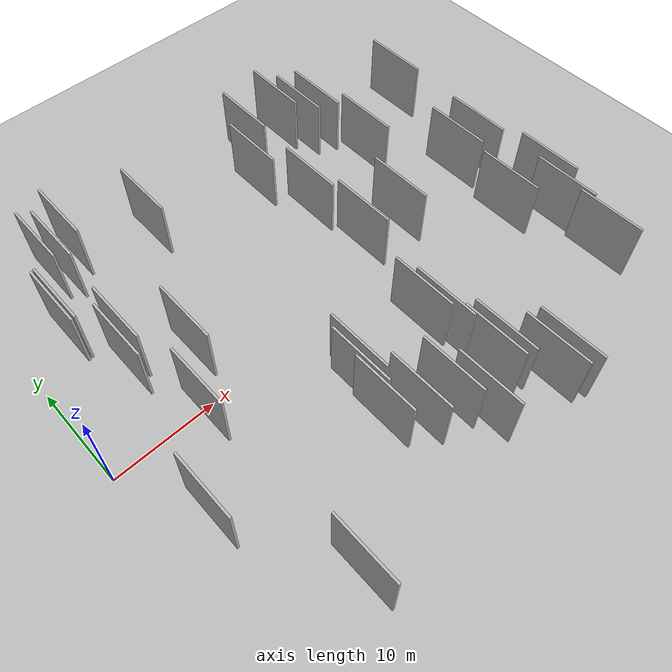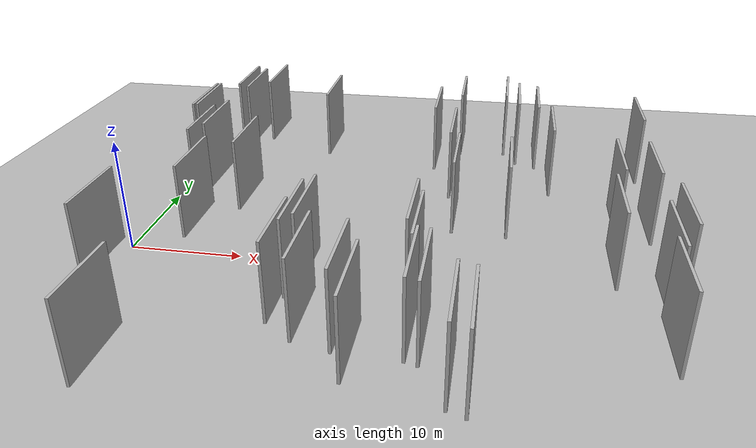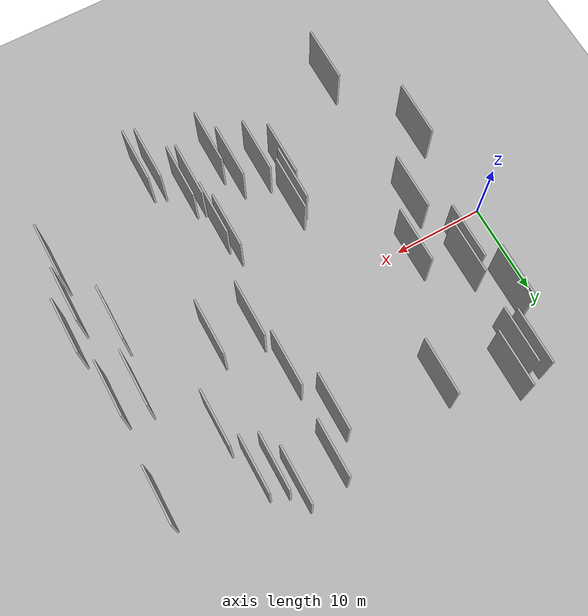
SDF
<?xml version="1.0" encoding="utf-8"?>

<sdf version="1.6">

   <world name="default">

      <gui fullscreen="0">

         <camera name="user_camera">

            <pose>-15 0 4.57585 0 0 0</pose>

            <view_controller>orbit</view_controller>

         </camera>

      </gui>

      <scene>

         <sky>

           <clouds>

             <speed>12</speed>

           </clouds>

         </sky>

         <ambient>0.4 0.4 0.4 1</ambient>

         <background>0.7 0.7 0.7 1</background>

         <shadows>1</shadows>

      </scene>

      <gravity>0 0 -9.8066</gravity>

      <magnetic_field>6e-06 2.3e-05 -4.2e-05</magnetic_field>

      <physics default="0" name="default_physics" type="ode">

         <ode>

            <solver>

               <type>quick</type>

               <iters>10</iters>

               <sor>1.0</sor>

               <use_dynamic_moi_rescaling>0</use_dynamic_moi_rescaling>

            </solver>

            <constraints>

               <cfm>0</cfm>

               <erp>0.2</erp>

               <contact_max_correcting_vel>100</contact_max_correcting_vel>

               <contact_surface_layer>0.001</contact_surface_layer>

            </constraints>

         </ode>

         <max_step_size>0.004</max_step_size>

         <real_time_factor>1</real_time_factor>

         <real_time_update_rate>250</real_time_update_rate>

      </physics>

      <light name="sun" type="directional">

         <cast_shadows>1</cast_shadows>

         <pose>0 0 10 0 0 0</pose>

         <diffuse>0.8 0.8 0.8 1</diffuse>

         <specular>0.2 0.2 0.2 1</specular>

         <attenuation>

            <range>1000</range>

            <constant>0.9</constant>

            <linear>0.01</linear>

            <quadratic>0.001</quadratic>

         </attenuation>

         <direction>-0.5 0.1 -0.9</direction>

      </light>

      <include>

         <name>ground_plane_1</name>

         <uri>model://HANNAS_ground_plane</uri>

         <pose>0 0 0  0 0 0</pose>

      </include>

      <include>

         <name>ground_plane_2</name>

         <uri>model://HANNAS_ground_plane</uri>

         <pose>100 0 0  0 0 0</pose>

      </include>

      <model name="HANNAS_wall_1">

         <static>1</static>

         <pose frame="">39.8931 -4.7881 5.0 0.000000 0.000000 1.570796</pose>

         <link name="link">

            <pose frame="">0 0 3.00 0 0 0</pose>

            <collision name="collision">

               <geometry>

                  <box>

                     <size>6.00 0.2 6.00</size>

                  </box>

               </geometry>

               <max_contacts>10</max_contacts>

               <surface>

                  <contact>

                     <ode/>

                  </contact>

                  <bounce/>

                  <friction>

                     <torsional>

                        <ode/>

                     </torsional>

                     <ode/>

                  </friction>

               </surface>

            </collision>

            <visual name="visual">

               <cast_shadows>0</cast_shadows>

               <geometry>

                  <box>

                     <size>6.00 0.2 6.00</size>

                  </box>

               </geometry>

               <material>

                  <script>

                     <uri>model://HANNAS_wall/materials/scripts</uri>

                     <uri>model://HANNAS_wall/materials/textures</uri>

                     <name>vrc/HANNAS_wall</name>

                  </script>

               </material>

            </visual>

            <self_collide>0</self_collide>

            <enable_wind>0</enable_wind>

            <kinematic>0</kinematic>

         </link>

      </model>

      <model name="HANNAS_wall_2">

         <static>1</static>

         <pose frame="">18.4958 -8.3169 5.0 0.000000 0.000000 1.570796</pose>

         <link name="link">

            <pose frame="">0 0 3.00 0 0 0</pose>

            <collision name="collision">

               <geometry>

                  <box>

                     <size>6.00 0.2 6.00</size>

                  </box>

               </geometry>

               <max_contacts>10</max_contacts>

               <surface>

                  <contact>

                     <ode/>

                  </contact>

                  <bounce/>

                  <friction>

                     <torsional>

                        <ode/>

                     </torsional>

                     <ode/>

                  </friction>

               </surface>

            </collision>

            <visual name="visual">

               <cast_shadows>0</cast_shadows>

               <geometry>

                  <box>

                     <size>6.00 0.2 6.00</size>

                  </box>

               </geometry>

               <material>

                  <script>

                     <uri>model://HANNAS_wall/materials/scripts</uri>

                     <uri>model://HANNAS_wall/materials/textures</uri>

                     <name>vrc/HANNAS_wall</name>

                  </script>

               </material>

            </visual>

            <self_collide>0</self_collide>

            <enable_wind>0</enable_wind>

            <kinematic>0</kinematic>

         </link>

      </model>

      <model name="HANNAS_wall_3">

         <static>1</static>

         <pose frame="">6.6819 5.8237 5.0 0.000000 0.000000 1.570796</pose>

         <link name="link">

            <pose frame="">0 0 3.00 0 0 0</pose>

            <collision name="collision">

               <geometry>

                  <box>

                     <size>6.00 0.2 6.00</size>

                  </box>

               </geometry>

               <max_contacts>10</max_contacts>

               <surface>

                  <contact>

                     <ode/>

                  </contact>

                  <bounce/>

                  <friction>

                     <torsional>

                        <ode/>

                     </torsional>

                     <ode/>

                  </friction>

               </surface>

            </collision>

            <visual name="visual">

               <cast_shadows>0</cast_shadows>

               <geometry>

                  <box>

                     <size>6.00 0.2 6.00</size>

                  </box>

               </geometry>

               <material>

                  <script>

                     <uri>model://HANNAS_wall/materials/scripts</uri>

                     <uri>model://HANNAS_wall/materials/textures</uri>

                     <name>vrc/HANNAS_wall</name>

                  </script>

               </material>

            </visual>

            <self_collide>0</self_collide>

            <enable_wind>0</enable_wind>

            <kinematic>0</kinematic>

         </link>

      </model>

      <model name="HANNAS_wall_4">

         <static>1</static>

         <pose frame="">43.1274 1.7760 5.0 0.000000 0.000000 1.570796</pose>

         <link name="link">

            <pose frame="">0 0 3.00 0 0 0</pose>

            <collision name="collision">

               <geometry>

                  <box>

                     <size>6.00 0.2 6.00</size>

                  </box>

               </geometry>

               <max_contacts>10</max_contacts>

               <surface>

                  <contact>

                     <ode/>

                  </contact>

                  <bounce/>

                  <friction>

                     <torsional>

                        <ode/>

                     </torsional>

                     <ode/>

                  </friction>

               </surface>

            </collision>

            <visual name="visual">

               <cast_shadows>0</cast_shadows>

               <geometry>

                  <box>

                     <size>6.00 0.2 6.00</size>

                  </box>

               </geometry>

               <material>

                  <script>

                     <uri>model://HANNAS_wall/materials/scripts</uri>

                     <uri>model://HANNAS_wall/materials/textures</uri>

                     <name>vrc/HANNAS_wall</name>

                  </script>

               </material>

            </visual>

            <self_collide>0</self_collide>

            <enable_wind>0</enable_wind>

            <kinematic>0</kinematic>

         </link>

      </model>

      <model name="HANNAS_wall_5">

         <static>1</static>

         <pose frame="">31.8089 17.0045 5.0 0.000000 0.000000 1.570796</pose>

         <link name="link">

            <pose frame="">0 0 3.00 0 0 0</pose>

            <collision name="collision">

               <geometry>

                  <box>

                     <size>6.00 0.2 6.00</size>

                  </box>

               </geometry>

               <max_contacts>10</max_contacts>

               <surface>

                  <contact>

                     <ode/>

                  </contact>

                  <bounce/>

                  <friction>

                     <torsional>

                        <ode/>

                     </torsional>

                     <ode/>

                  </friction>

               </surface>

            </collision>

            <visual name="visual">

               <cast_shadows>0</cast_shadows>

               <geometry>

                  <box>

                     <size>6.00 0.2 6.00</size>

                  </box>

               </geometry>

               <material>

                  <script>

                     <uri>model://HANNAS_wall/materials/scripts</uri>

                     <uri>model://HANNAS_wall/materials/textures</uri>

                     <name>vrc/HANNAS_wall</name>

                  </script>

               </material>

            </visual>

            <self_collide>0</self_collide>

            <enable_wind>0</enable_wind>

            <kinematic>0</kinematic>

         </link>

      </model>

      <model name="HANNAS_wall_6">

         <static>1</static>

         <pose frame="">27.7106 16.5119 5.0 0.000000 0.000000 1.570796</pose>

         <link name="link">

            <pose frame="">0 0 3.00 0 0 0</pose>

            <collision name="collision">

               <geometry>

                  <box>

                     <size>6.00 0.2 6.00</size>

                  </box>

               </geometry>

               <max_contacts>10</max_contacts>

               <surface>

                  <contact>

                     <ode/>

                  </contact>

                  <bounce/>

                  <friction>

                     <torsional>

                        <ode/>

                     </torsional>

                     <ode/>

                  </friction>

               </surface>

            </collision>

            <visual name="visual">

               <cast_shadows>0</cast_shadows>

               <geometry>

                  <box>

                     <size>6.00 0.2 6.00</size>

                  </box>

               </geometry>

               <material>

                  <script>

                     <uri>model://HANNAS_wall/materials/scripts</uri>

                     <uri>model://HANNAS_wall/materials/textures</uri>

                     <name>vrc/HANNAS_wall</name>

                  </script>

               </material>

            </visual>

            <self_collide>0</self_collide>

            <enable_wind>0</enable_wind>

            <kinematic>0</kinematic>

         </link>

      </model>

      <model name="HANNAS_wall_7">

         <static>1</static>

         <pose frame="">42.8844 -8.4914 5.0 0.000000 0.000000 1.570796</pose>

         <link name="link">

            <pose frame="">0 0 3.00 0 0 0</pose>

            <collision name="collision">

               <geometry>

                  <box>

                     <size>6.00 0.2 6.00</size>

                  </box>

               </geometry>

               <max_contacts>10</max_contacts>

               <surface>

                  <contact>

                     <ode/>

                  </contact>

                  <bounce/>

                  <friction>

                     <torsional>

                        <ode/>

                     </torsional>

                     <ode/>

                  </friction>

               </surface>

            </collision>

            <visual name="visual">

               <cast_shadows>0</cast_shadows>

               <geometry>

                  <box>

                     <size>6.00 0.2 6.00</size>

                  </box>

               </geometry>

               <material>

                  <script>

                     <uri>model://HANNAS_wall/materials/scripts</uri>

                     <uri>model://HANNAS_wall/materials/textures</uri>

                     <name>vrc/HANNAS_wall</name>

                  </script>

               </material>

            </visual>

            <self_collide>0</self_collide>

            <enable_wind>0</enable_wind>

            <kinematic>0</kinematic>

         </link>

      </model>

      <model name="HANNAS_wall_8">

         <static>1</static>

         <pose frame="">43.4499 12.5827 5.0 0.000000 0.000000 1.570796</pose>

         <link name="link">

            <pose frame="">0 0 3.00 0 0 0</pose>

            <collision name="collision">

               <geometry>

                  <box>

                     <size>6.00 0.2 6.00</size>

                  </box>

               </geometry>

               <max_contacts>10</max_contacts>

               <surface>

                  <contact>

                     <ode/>

                  </contact>

                  <bounce/>

                  <friction>

                     <torsional>

                        <ode/>

                     </torsional>

                     <ode/>

                  </friction>

               </surface>

            </collision>

            <visual name="visual">

               <cast_shadows>0</cast_shadows>

               <geometry>

                  <box>

                     <size>6.00 0.2 6.00</size>

                  </box>

               </geometry>

               <material>

                  <script>

                     <uri>model://HANNAS_wall/materials/scripts</uri>

                     <uri>model://HANNAS_wall/materials/textures</uri>

                     <name>vrc/HANNAS_wall</name>

                  </script>

               </material>

            </visual>

            <self_collide>0</self_collide>

            <enable_wind>0</enable_wind>

            <kinematic>0</kinematic>

         </link>

      </model>

      <model name="HANNAS_wall_9">

         <static>1</static>

         <pose frame="">25.5836 12.7834 5.0 0.000000 0.000000 1.570796</pose>

         <link name="link">

            <pose frame="">0 0 3.00 0 0 0</pose>

            <collision name="collision">

               <geometry>

                  <box>

                     <size>6.00 0.2 6.00</size>

                  </box>

               </geometry>

               <max_contacts>10</max_contacts>

               <surface>

                  <contact>

                     <ode/>

                  </contact>

                  <bounce/>

                  <friction>

                     <torsional>

                        <ode/>

                     </torsional>

                     <ode/>

                  </friction>

               </surface>

            </collision>

            <visual name="visual">

               <cast_shadows>0</cast_shadows>

               <geometry>

                  <box>

                     <size>6.00 0.2 6.00</size>

                  </box>

               </geometry>

               <material>

                  <script>

                     <uri>model://HANNAS_wall/materials/scripts</uri>

                     <uri>model://HANNAS_wall/materials/textures</uri>

                     <name>vrc/HANNAS_wall</name>

                  </script>

               </material>

            </visual>

            <self_collide>0</self_collide>

            <enable_wind>0</enable_wind>

            <kinematic>0</kinematic>

         </link>

      </model>

      <model name="HANNAS_wall_10">

         <static>1</static>

         <pose frame="">32.9548 14.9799 5.0 0.000000 0.000000 1.570796</pose>

         <link name="link">

            <pose frame="">0 0 3.00 0 0 0</pose>

            <collision name="collision">

               <geometry>

                  <box>

                     <size>6.00 0.2 6.00</size>

                  </box>

               </geometry>

               <max_contacts>10</max_contacts>

               <surface>

                  <contact>

                     <ode/>

                  </contact>

                  <bounce/>

                  <friction>

                     <torsional>

                        <ode/>

                     </torsional>

                     <ode/>

                  </friction>

               </surface>

            </collision>

            <visual name="visual">

               <cast_shadows>0</cast_shadows>

               <geometry>

                  <box>

                     <size>6.00 0.2 6.00</size>

                  </box>

               </geometry>

               <material>

                  <script>

                     <uri>model://HANNAS_wall/materials/scripts</uri>

                     <uri>model://HANNAS_wall/materials/textures</uri>

                     <name>vrc/HANNAS_wall</name>

                  </script>

               </material>

            </visual>

            <self_collide>0</self_collide>

            <enable_wind>0</enable_wind>

            <kinematic>0</kinematic>

         </link>

      </model>

      <model name="HANNAS_wall_11">

         <static>1</static>

         <pose frame="">27.4115 7.1370 5.0 0.000000 0.000000 1.570796</pose>

         <link name="link">

            <pose frame="">0 0 3.00 0 0 0</pose>

            <collision name="collision">

               <geometry>

                  <box>

                     <size>6.00 0.2 6.00</size>

                  </box>

               </geometry>

               <max_contacts>10</max_contacts>

               <surface>

                  <contact>

                     <ode/>

                  </contact>

                  <bounce/>

                  <friction>

                     <torsional>

                        <ode/>

                     </torsional>

                     <ode/>

                  </friction>

               </surface>

            </collision>

            <visual name="visual">

               <cast_shadows>0</cast_shadows>

               <geometry>

                  <box>

                     <size>6.00 0.2 6.00</size>

                  </box>

               </geometry>

               <material>

                  <script>

                     <uri>model://HANNAS_wall/materials/scripts</uri>

                     <uri>model://HANNAS_wall/materials/textures</uri>

                     <name>vrc/HANNAS_wall</name>

                  </script>

               </material>

            </visual>

            <self_collide>0</self_collide>

            <enable_wind>0</enable_wind>

            <kinematic>0</kinematic>

         </link>

      </model>

      <model name="HANNAS_wall_12">

         <static>1</static>

         <pose frame="">4.2391 10.3769 5.0 0.000000 0.000000 1.570796</pose>

         <link name="link">

            <pose frame="">0 0 3.00 0 0 0</pose>

            <collision name="collision">

               <geometry>

                  <box>

                     <size>6.00 0.2 6.00</size>

                  </box>

               </geometry>

               <max_contacts>10</max_contacts>

               <surface>

                  <contact>

                     <ode/>

                  </contact>

                  <bounce/>

                  <friction>

                     <torsional>

                        <ode/>

                     </torsional>

                     <ode/>

                  </friction>

               </surface>

            </collision>

            <visual name="visual">

               <cast_shadows>0</cast_shadows>

               <geometry>

                  <box>

                     <size>6.00 0.2 6.00</size>

                  </box>

               </geometry>

               <material>

                  <script>

                     <uri>model://HANNAS_wall/materials/scripts</uri>

                     <uri>model://HANNAS_wall/materials/textures</uri>

                     <name>vrc/HANNAS_wall</name>

                  </script>

               </material>

            </visual>

            <self_collide>0</self_collide>

            <enable_wind>0</enable_wind>

            <kinematic>0</kinematic>

         </link>

      </model>

      <model name="HANNAS_wall_13">

         <static>1</static>

         <pose frame="">10.5431 2.3952 5.0 0.000000 0.000000 1.570796</pose>

         <link name="link">

            <pose frame="">0 0 3.00 0 0 0</pose>

            <collision name="collision">

               <geometry>

                  <box>

                     <size>6.00 0.2 6.00</size>

                  </box>

               </geometry>

               <max_contacts>10</max_contacts>

               <surface>

                  <contact>

                     <ode/>

                  </contact>

                  <bounce/>

                  <friction>

                     <torsional>

                        <ode/>

                     </torsional>

                     <ode/>

                  </friction>

               </surface>

            </collision>

            <visual name="visual">

               <cast_shadows>0</cast_shadows>

               <geometry>

                  <box>

                     <size>6.00 0.2 6.00</size>

                  </box>

               </geometry>

               <material>

                  <script>

                     <uri>model://HANNAS_wall/materials/scripts</uri>

                     <uri>model://HANNAS_wall/materials/textures</uri>

                     <name>vrc/HANNAS_wall</name>

                  </script>

               </material>

            </visual>

            <self_collide>0</self_collide>

            <enable_wind>0</enable_wind>

            <kinematic>0</kinematic>

         </link>

      </model>

      <model name="HANNAS_wall_14">

         <static>1</static>

         <pose frame="">25.8835 -7.8396 5.0 0.000000 0.000000 1.570796</pose>

         <link name="link">

            <pose frame="">0 0 3.00 0 0 0</pose>

            <collision name="collision">

               <geometry>

                  <box>

                     <size>6.00 0.2 6.00</size>

                  </box>

               </geometry>

               <max_contacts>10</max_contacts>

               <surface>

                  <contact>

                     <ode/>

                  </contact>

                  <bounce/>

                  <friction>

                     <torsional>

                        <ode/>

                     </torsional>

                     <ode/>

                  </friction>

               </surface>

            </collision>

            <visual name="visual">

               <cast_shadows>0</cast_shadows>

               <geometry>

                  <box>

                     <size>6.00 0.2 6.00</size>

                  </box>

               </geometry>

               <material>

                  <script>

                     <uri>model://HANNAS_wall/materials/scripts</uri>

                     <uri>model://HANNAS_wall/materials/textures</uri>

                     <name>vrc/HANNAS_wall</name>

                  </script>

               </material>

            </visual>

            <self_collide>0</self_collide>

            <enable_wind>0</enable_wind>

            <kinematic>0</kinematic>

         </link>

      </model>

      <model name="HANNAS_wall_15">

         <static>1</static>

         <pose frame="">26.4255 -9.6365 5.0 0.000000 0.000000 1.570796</pose>

         <link name="link">

            <pose frame="">0 0 3.00 0 0 0</pose>

            <collision name="collision">

               <geometry>

                  <box>

                     <size>6.00 0.2 6.00</size>

                  </box>

               </geometry>

               <max_contacts>10</max_contacts>

               <surface>

                  <contact>

                     <ode/>

                  </contact>

                  <bounce/>

                  <friction>

                     <torsional>

                        <ode/>

                     </torsional>

                     <ode/>

                  </friction>

               </surface>

            </collision>

            <visual name="visual">

               <cast_shadows>0</cast_shadows>

               <geometry>

                  <box>

                     <size>6.00 0.2 6.00</size>

                  </box>

               </geometry>

               <material>

                  <script>

                     <uri>model://HANNAS_wall/materials/scripts</uri>

                     <uri>model://HANNAS_wall/materials/textures</uri>

                     <name>vrc/HANNAS_wall</name>

                  </script>

               </material>

            </visual>

            <self_collide>0</self_collide>

            <enable_wind>0</enable_wind>

            <kinematic>0</kinematic>

         </link>

      </model>

      <model name="HANNAS_wall_16">

         <static>1</static>

         <pose frame="">3.9068 10.2969 5.0 0.000000 0.000000 1.570796</pose>

         <link name="link">

            <pose frame="">0 0 3.00 0 0 0</pose>

            <collision name="collision">

               <geometry>

                  <box>

                     <size>6.00 0.2 6.00</size>

                  </box>

               </geometry>

               <max_contacts>10</max_contacts>

               <surface>

                  <contact>

                     <ode/>

                  </contact>

                  <bounce/>

                  <friction>

                     <torsional>

                        <ode/>

                     </torsional>

                     <ode/>

                  </friction>

               </surface>

            </collision>

            <visual name="visual">

               <cast_shadows>0</cast_shadows>

               <geometry>

                  <box>

                     <size>6.00 0.2 6.00</size>

                  </box>

               </geometry>

               <material>

                  <script>

                     <uri>model://HANNAS_wall/materials/scripts</uri>

                     <uri>model://HANNAS_wall/materials/textures</uri>

                     <name>vrc/HANNAS_wall</name>

                  </script>

               </material>

            </visual>

            <self_collide>0</self_collide>

            <enable_wind>0</enable_wind>

            <kinematic>0</kinematic>

         </link>

      </model>

      <model name="HANNAS_wall_17">

         <static>1</static>

         <pose frame="">3.3383 -9.3803 5.0 0.000000 0.000000 1.570796</pose>

         <link name="link">

            <pose frame="">0 0 3.00 0 0 0</pose>

            <collision name="collision">

               <geometry>

                  <box>

                     <size>6.00 0.2 6.00</size>

                  </box>

               </geometry>

               <max_contacts>10</max_contacts>

               <surface>

                  <contact>

                     <ode/>

                  </contact>

                  <bounce/>

                  <friction>

                     <torsional>

                        <ode/>

                     </torsional>

                     <ode/>

                  </friction>

               </surface>

            </collision>

            <visual name="visual">

               <cast_shadows>0</cast_shadows>

               <geometry>

                  <box>

                     <size>6.00 0.2 6.00</size>

                  </box>

               </geometry>

               <material>

                  <script>

                     <uri>model://HANNAS_wall/materials/scripts</uri>

                     <uri>model://HANNAS_wall/materials/textures</uri>

                     <name>vrc/HANNAS_wall</name>

                  </script>

               </material>

            </visual>

            <self_collide>0</self_collide>

            <enable_wind>0</enable_wind>

            <kinematic>0</kinematic>

         </link>

      </model>

      <model name="HANNAS_wall_18">

         <static>1</static>

         <pose frame="">26.6523 -14.4585 5.0 0.000000 0.000000 1.570796</pose>

         <link name="link">

            <pose frame="">0 0 3.00 0 0 0</pose>

            <collision name="collision">

               <geometry>

                  <box>

                     <size>6.00 0.2 6.00</size>

                  </box>

               </geometry>

               <max_contacts>10</max_contacts>

               <surface>

                  <contact>

                     <ode/>

                  </contact>

                  <bounce/>

                  <friction>

                     <torsional>

                        <ode/>

                     </torsional>

                     <ode/>

                  </friction>

               </surface>

            </collision>

            <visual name="visual">

               <cast_shadows>0</cast_shadows>

               <geometry>

                  <box>

                     <size>6.00 0.2 6.00</size>

                  </box>

               </geometry>

               <material>

                  <script>

                     <uri>model://HANNAS_wall/materials/scripts</uri>

                     <uri>model://HANNAS_wall/materials/textures</uri>

                     <name>vrc/HANNAS_wall</name>

                  </script>

               </material>

            </visual>

            <self_collide>0</self_collide>

            <enable_wind>0</enable_wind>

            <kinematic>0</kinematic>

         </link>

      </model>

      <model name="HANNAS_wall_19">

         <static>1</static>

         <pose frame="">22.1800 -14.3262 5.0 0.000000 0.000000 1.570796</pose>

         <link name="link">

            <pose frame="">0 0 3.00 0 0 0</pose>

            <collision name="collision">

               <geometry>

                  <box>

                     <size>6.00 0.2 6.00</size>

                  </box>

               </geometry>

               <max_contacts>10</max_contacts>

               <surface>

                  <contact>

                     <ode/>

                  </contact>

                  <bounce/>

                  <friction>

                     <torsional>

                        <ode/>

                     </torsional>

                     <ode/>

                  </friction>

               </surface>

            </collision>

            <visual name="visual">

               <cast_shadows>0</cast_shadows>

               <geometry>

                  <box>

                     <size>6.00 0.2 6.00</size>

                  </box>

               </geometry>

               <material>

                  <script>

                     <uri>model://HANNAS_wall/materials/scripts</uri>

                     <uri>model://HANNAS_wall/materials/textures</uri>

                     <name>vrc/HANNAS_wall</name>

                  </script>

               </material>

            </visual>

            <self_collide>0</self_collide>

            <enable_wind>0</enable_wind>

            <kinematic>0</kinematic>

         </link>

      </model>

      <model name="HANNAS_wall_20">

         <static>1</static>

         <pose frame="">40.6523 2.0046 5.0 0.000000 0.000000 1.570796</pose>

         <link name="link">

            <pose frame="">0 0 3.00 0 0 0</pose>

            <collision name="collision">

               <geometry>

                  <box>

                     <size>6.00 0.2 6.00</size>

                  </box>

               </geometry>

               <max_contacts>10</max_contacts>

               <surface>

                  <contact>

                     <ode/>

                  </contact>

                  <bounce/>

                  <friction>

                     <torsional>

                        <ode/>

                     </torsional>

                     <ode/>

                  </friction>

               </surface>

            </collision>

            <visual name="visual">

               <cast_shadows>0</cast_shadows>

               <geometry>

                  <box>

                     <size>6.00 0.2 6.00</size>

                  </box>

               </geometry>

               <material>

                  <script>

                     <uri>model://HANNAS_wall/materials/scripts</uri>

                     <uri>model://HANNAS_wall/materials/textures</uri>

                     <name>vrc/HANNAS_wall</name>

                  </script>

               </material>

            </visual>

            <self_collide>0</self_collide>

            <enable_wind>0</enable_wind>

            <kinematic>0</kinematic>

         </link>

      </model>

      <model name="HANNAS_wall_21">

         <static>1</static>

         <pose frame="">28.1357 1.2320 5.0 0.000000 0.000000 1.570796</pose>

         <link name="link">

            <pose frame="">0 0 3.00 0 0 0</pose>

            <collision name="collision">

               <geometry>

                  <box>

                     <size>6.00 0.2 6.00</size>

                  </box>

               </geometry>

               <max_contacts>10</max_contacts>

               <surface>

                  <contact>

                     <ode/>

                  </contact>

                  <bounce/>

                  <friction>

                     <torsional>

                        <ode/>

                     </torsional>

                     <ode/>

                  </friction>

               </surface>

            </collision>

            <visual name="visual">

               <cast_shadows>0</cast_shadows>

               <geometry>

                  <box>

                     <size>6.00 0.2 6.00</size>

                  </box>

               </geometry>

               <material>

                  <script>

                     <uri>model://HANNAS_wall/materials/scripts</uri>

                     <uri>model://HANNAS_wall/materials/textures</uri>

                     <name>vrc/HANNAS_wall</name>

                  </script>

               </material>

            </visual>

            <self_collide>0</self_collide>

            <enable_wind>0</enable_wind>

            <kinematic>0</kinematic>

         </link>

      </model>

      <model name="HANNAS_wall_22">

         <static>1</static>

         <pose frame="">34.6596 14.2995 5.0 0.000000 0.000000 1.570796</pose>

         <link name="link">

            <pose frame="">0 0 3.00 0 0 0</pose>

            <collision name="collision">

               <geometry>

                  <box>

                     <size>6.00 0.2 6.00</size>

                  </box>

               </geometry>

               <max_contacts>10</max_contacts>

               <surface>

                  <contact>

                     <ode/>

                  </contact>

                  <bounce/>

                  <friction>

                     <torsional>

                        <ode/>

                     </torsional>

                     <ode/>

                  </friction>

               </surface>

            </collision>

            <visual name="visual">

               <cast_shadows>0</cast_shadows>

               <geometry>

                  <box>

                     <size>6.00 0.2 6.00</size>

                  </box>

               </geometry>

               <material>

                  <script>

                     <uri>model://HANNAS_wall/materials/scripts</uri>

                     <uri>model://HANNAS_wall/materials/textures</uri>

                     <name>vrc/HANNAS_wall</name>

                  </script>

               </material>

            </visual>

            <self_collide>0</self_collide>

            <enable_wind>0</enable_wind>

            <kinematic>0</kinematic>

         </link>

      </model>

      <model name="HANNAS_wall_23">

         <static>1</static>

         <pose frame="">7.9140 -2.6697 5.0 0.000000 0.000000 1.570796</pose>

         <link name="link">

            <pose frame="">0 0 3.00 0 0 0</pose>

            <collision name="collision">

               <geometry>

                  <box>

                     <size>6.00 0.2 6.00</size>

                  </box>

               </geometry>

               <max_contacts>10</max_contacts>

               <surface>

                  <contact>

                     <ode/>

                  </contact>

                  <bounce/>

                  <friction>

                     <torsional>

                        <ode/>

                     </torsional>

                     <ode/>

                  </friction>

               </surface>

            </collision>

            <visual name="visual">

               <cast_shadows>0</cast_shadows>

               <geometry>

                  <box>

                     <size>6.00 0.2 6.00</size>

                  </box>

               </geometry>

               <material>

                  <script>

                     <uri>model://HANNAS_wall/materials/scripts</uri>

                     <uri>model://HANNAS_wall/materials/textures</uri>

                     <name>vrc/HANNAS_wall</name>

                  </script>

               </material>

            </visual>

            <self_collide>0</self_collide>

            <enable_wind>0</enable_wind>

            <kinematic>0</kinematic>

         </link>

      </model>

      <model name="HANNAS_wall_24">

         <static>1</static>

         <pose frame="">15.2452 14.7428 5.0 0.000000 0.000000 1.570796</pose>

         <link name="link">

            <pose frame="">0 0 3.00 0 0 0</pose>

            <collision name="collision">

               <geometry>

                  <box>

                     <size>6.00 0.2 6.00</size>

                  </box>

               </geometry>

               <max_contacts>10</max_contacts>

               <surface>

                  <contact>

                     <ode/>

                  </contact>

                  <bounce/>

                  <friction>

                     <torsional>

                        <ode/>

                     </torsional>

                     <ode/>

                  </friction>

               </surface>

            </collision>

            <visual name="visual">

               <cast_shadows>0</cast_shadows>

               <geometry>

                  <box>

                     <size>6.00 0.2 6.00</size>

                  </box>

               </geometry>

               <material>

                  <script>

                     <uri>model://HANNAS_wall/materials/scripts</uri>

                     <uri>model://HANNAS_wall/materials/textures</uri>

                     <name>vrc/HANNAS_wall</name>

                  </script>

               </material>

            </visual>

            <self_collide>0</self_collide>

            <enable_wind>0</enable_wind>

            <kinematic>0</kinematic>

         </link>

      </model>

      <model name="HANNAS_wall_25">

         <static>1</static>

         <pose frame="">5.8791 4.4562 5.0 0.000000 0.000000 1.570796</pose>

         <link name="link">

            <pose frame="">0 0 3.00 0 0 0</pose>

            <collision name="collision">

               <geometry>

                  <box>

                     <size>6.00 0.2 6.00</size>

                  </box>

               </geometry>

               <max_contacts>10</max_contacts>

               <surface>

                  <contact>

                     <ode/>

                  </contact>

                  <bounce/>

                  <friction>

                     <torsional>

                        <ode/>

                     </torsional>

                     <ode/>

                  </friction>

               </surface>

            </collision>

            <visual name="visual">

               <cast_shadows>0</cast_shadows>

               <geometry>

                  <box>

                     <size>6.00 0.2 6.00</size>

                  </box>

               </geometry>

               <material>

                  <script>

                     <uri>model://HANNAS_wall/materials/scripts</uri>

                     <uri>model://HANNAS_wall/materials/textures</uri>

                     <name>vrc/HANNAS_wall</name>

                  </script>

               </material>

            </visual>

            <self_collide>0</self_collide>

            <enable_wind>0</enable_wind>

            <kinematic>0</kinematic>

         </link>

      </model>

      <model name="HANNAS_wall_26">

         <static>1</static>

         <pose frame="">17.8063 -9.2130 5.0 0.000000 0.000000 1.570796</pose>

         <link name="link">

            <pose frame="">0 0 3.00 0 0 0</pose>

            <collision name="collision">

               <geometry>

                  <box>

                     <size>6.00 0.2 6.00</size>

                  </box>

               </geometry>

               <max_contacts>10</max_contacts>

               <surface>

                  <contact>

                     <ode/>

                  </contact>

                  <bounce/>

                  <friction>

                     <torsional>

                        <ode/>

                     </torsional>

                     <ode/>

                  </friction>

               </surface>

            </collision>

            <visual name="visual">

               <cast_shadows>0</cast_shadows>

               <geometry>

                  <box>

                     <size>6.00 0.2 6.00</size>

                  </box>

               </geometry>

               <material>

                  <script>

                     <uri>model://HANNAS_wall/materials/scripts</uri>

                     <uri>model://HANNAS_wall/materials/textures</uri>

                     <name>vrc/HANNAS_wall</name>

                  </script>

               </material>

            </visual>

            <self_collide>0</self_collide>

            <enable_wind>0</enable_wind>

            <kinematic>0</kinematic>

         </link>

      </model>

      <model name="HANNAS_wall_27">

         <static>1</static>

         <pose frame="">27.5156 -14.7127 5.0 0.000000 0.000000 1.570796</pose>

         <link name="link">

            <pose frame="">0 0 3.00 0 0 0</pose>

            <collision name="collision">

               <geometry>

                  <box>

                     <size>6.00 0.2 6.00</size>

                  </box>

               </geometry>

               <max_contacts>10</max_contacts>

               <surface>

                  <contact>

                     <ode/>

                  </contact>

                  <bounce/>

                  <friction>

                     <torsional>

                        <ode/>

                     </torsional>

                     <ode/>

                  </friction>

               </surface>

            </collision>

            <visual name="visual">

               <cast_shadows>0</cast_shadows>

               <geometry>

                  <box>

                     <size>6.00 0.2 6.00</size>

                  </box>

               </geometry>

               <material>

                  <script>

                     <uri>model://HANNAS_wall/materials/scripts</uri>

                     <uri>model://HANNAS_wall/materials/textures</uri>

                     <name>vrc/HANNAS_wall</name>

                  </script>

               </material>

            </visual>

            <self_collide>0</self_collide>

            <enable_wind>0</enable_wind>

            <kinematic>0</kinematic>

         </link>

      </model>

      <model name="HANNAS_wall_28">

         <static>1</static>

         <pose frame="">8.8038 17.4013 5.0 0.000000 0.000000 1.570796</pose>

         <link name="link">

            <pose frame="">0 0 3.00 0 0 0</pose>

            <collision name="collision">

               <geometry>

                  <box>

                     <size>6.00 0.2 6.00</size>

                  </box>

               </geometry>

               <max_contacts>10</max_contacts>

               <surface>

                  <contact>

                     <ode/>

                  </contact>

                  <bounce/>

                  <friction>

                     <torsional>

                        <ode/>

                     </torsional>

                     <ode/>

                  </friction>

               </surface>

            </collision>

            <visual name="visual">

               <cast_shadows>0</cast_shadows>

               <geometry>

                  <box>

                     <size>6.00 0.2 6.00</size>

                  </box>

               </geometry>

               <material>

                  <script>

                     <uri>model://HANNAS_wall/materials/scripts</uri>

                     <uri>model://HANNAS_wall/materials/textures</uri>

                     <name>vrc/HANNAS_wall</name>

                  </script>

               </material>

            </visual>

            <self_collide>0</self_collide>

            <enable_wind>0</enable_wind>

            <kinematic>0</kinematic>

         </link>

      </model>

      <model name="HANNAS_wall_29">

         <static>1</static>

         <pose frame="">17.4323 -12.0952 5.0 0.000000 0.000000 1.570796</pose>

         <link name="link">

            <pose frame="">0 0 3.00 0 0 0</pose>

            <collision name="collision">

               <geometry>

                  <box>

                     <size>6.00 0.2 6.00</size>

                  </box>

               </geometry>

               <max_contacts>10</max_contacts>

               <surface>

                  <contact>

                     <ode/>

                  </contact>

                  <bounce/>

                  <friction>

                     <torsional>

                        <ode/>

                     </torsional>

                     <ode/>

                  </friction>

               </surface>

            </collision>

            <visual name="visual">

               <cast_shadows>0</cast_shadows>

               <geometry>

                  <box>

                     <size>6.00 0.2 6.00</size>

                  </box>

               </geometry>

               <material>

                  <script>

                     <uri>model://HANNAS_wall/materials/scripts</uri>

                     <uri>model://HANNAS_wall/materials/textures</uri>

                     <name>vrc/HANNAS_wall</name>

                  </script>

               </material>

            </visual>

            <self_collide>0</self_collide>

            <enable_wind>0</enable_wind>

            <kinematic>0</kinematic>

         </link>

      </model>

      <model name="HANNAS_wall_30">

         <static>1</static>

         <pose frame="">6.0777 16.4712 5.0 0.000000 0.000000 1.570796</pose>

         <link name="link">

            <pose frame="">0 0 3.00 0 0 0</pose>

            <collision name="collision">

               <geometry>

                  <box>

                     <size>6.00 0.2 6.00</size>

                  </box>

               </geometry>

               <max_contacts>10</max_contacts>

               <surface>

                  <contact>

                     <ode/>

                  </contact>

                  <bounce/>

                  <friction>

                     <torsional>

                        <ode/>

                     </torsional>

                     <ode/>

                  </friction>

               </surface>

            </collision>

            <visual name="visual">

               <cast_shadows>0</cast_shadows>

               <geometry>

                  <box>

                     <size>6.00 0.2 6.00</size>

                  </box>

               </geometry>

               <material>

                  <script>

                     <uri>model://HANNAS_wall/materials/scripts</uri>

                     <uri>model://HANNAS_wall/materials/textures</uri>

                     <name>vrc/HANNAS_wall</name>

                  </script>

               </material>

            </visual>

            <self_collide>0</self_collide>

            <enable_wind>0</enable_wind>

            <kinematic>0</kinematic>

         </link>

      </model>

      <model name="HANNAS_wall_31">

         <static>1</static>

         <pose frame="">44.1485 -5.6272 5.0 0.000000 0.000000 1.570796</pose>

         <link name="link">

            <pose frame="">0 0 3.00 0 0 0</pose>

            <collision name="collision">

               <geometry>

                  <box>

                     <size>6.00 0.2 6.00</size>

                  </box>

               </geometry>

               <max_contacts>10</max_contacts>

               <surface>

                  <contact>

                     <ode/>

                  </contact>

                  <bounce/>

                  <friction>

                     <torsional>

                        <ode/>

                     </torsional>

                     <ode/>

                  </friction>

               </surface>

            </collision>

            <visual name="visual">

               <cast_shadows>0</cast_shadows>

               <geometry>

                  <box>

                     <size>6.00 0.2 6.00</size>

                  </box>

               </geometry>

               <material>

                  <script>

                     <uri>model://HANNAS_wall/materials/scripts</uri>

                     <uri>model://HANNAS_wall/materials/textures</uri>

                     <name>vrc/HANNAS_wall</name>

                  </script>

               </material>

            </visual>

            <self_collide>0</self_collide>

            <enable_wind>0</enable_wind>

            <kinematic>0</kinematic>

         </link>

      </model>

      <model name="HANNAS_wall_32">

         <static>1</static>

         <pose frame="">7.1319 15.7415 5.0 0.000000 0.000000 1.570796</pose>

         <link name="link">

            <pose frame="">0 0 3.00 0 0 0</pose>

            <collision name="collision">

               <geometry>

                  <box>

                     <size>6.00 0.2 6.00</size>

                  </box>

               </geometry>

               <max_contacts>10</max_contacts>

               <surface>

                  <contact>

                     <ode/>

                  </contact>

                  <bounce/>

                  <friction>

                     <torsional>

                        <ode/>

                     </torsional>

                     <ode/>

                  </friction>

               </surface>

            </collision>

            <visual name="visual">

               <cast_shadows>0</cast_shadows>

               <geometry>

                  <box>

                     <size>6.00 0.2 6.00</size>

                  </box>

               </geometry>

               <material>

                  <script>

                     <uri>model://HANNAS_wall/materials/scripts</uri>

                     <uri>model://HANNAS_wall/materials/textures</uri>

                     <name>vrc/HANNAS_wall</name>

                  </script>

               </material>

            </visual>

            <self_collide>0</self_collide>

            <enable_wind>0</enable_wind>

            <kinematic>0</kinematic>

         </link>

      </model>

      <model name="HANNAS_wall_33">

         <static>1</static>

         <pose frame="">19.4967 -13.6748 5.0 0.000000 0.000000 1.570796</pose>

         <link name="link">

            <pose frame="">0 0 3.00 0 0 0</pose>

            <collision name="collision">

               <geometry>

                  <box>

                     <size>6.00 0.2 6.00</size>

                  </box>

               </geometry>

               <max_contacts>10</max_contacts>

               <surface>

                  <contact>

                     <ode/>

                  </contact>

                  <bounce/>

                  <friction>

                     <torsional>

                        <ode/>

                     </torsional>

                     <ode/>

                  </friction>

               </surface>

            </collision>

            <visual name="visual">

               <cast_shadows>0</cast_shadows>

               <geometry>

                  <box>

                     <size>6.00 0.2 6.00</size>

                  </box>

               </geometry>

               <material>

                  <script>

                     <uri>model://HANNAS_wall/materials/scripts</uri>

                     <uri>model://HANNAS_wall/materials/textures</uri>

                     <name>vrc/HANNAS_wall</name>

                  </script>

               </material>

            </visual>

            <self_collide>0</self_collide>

            <enable_wind>0</enable_wind>

            <kinematic>0</kinematic>

         </link>

      </model>

      <model name="HANNAS_wall_34">

         <static>1</static>

         <pose frame="">30.6010 -18.4637 5.0 0.000000 0.000000 1.570796</pose>

         <link name="link">

            <pose frame="">0 0 3.00 0 0 0</pose>

            <collision name="collision">

               <geometry>

                  <box>

                     <size>6.00 0.2 6.00</size>

                  </box>

               </geometry>

               <max_contacts>10</max_contacts>

               <surface>

                  <contact>

                     <ode/>

                  </contact>

                  <bounce/>

                  <friction>

                     <torsional>

                        <ode/>

                     </torsional>

                     <ode/>

                  </friction>

               </surface>

            </collision>

            <visual name="visual">

               <cast_shadows>0</cast_shadows>

               <geometry>

                  <box>

                     <size>6.00 0.2 6.00</size>

                  </box>

               </geometry>

               <material>

                  <script>

                     <uri>model://HANNAS_wall/materials/scripts</uri>

                     <uri>model://HANNAS_wall/materials/textures</uri>

                     <name>vrc/HANNAS_wall</name>

                  </script>

               </material>

            </visual>

            <self_collide>0</self_collide>

            <enable_wind>0</enable_wind>

            <kinematic>0</kinematic>

         </link>

      </model>

      <model name="HANNAS_wall_35">

         <static>1</static>

         <pose frame="">42.4850 -13.3315 5.0 0.000000 0.000000 1.570796</pose>

         <link name="link">

            <pose frame="">0 0 3.00 0 0 0</pose>

            <collision name="collision">

               <geometry>

                  <box>

                     <size>6.00 0.2 6.00</size>

                  </box>

               </geometry>

               <max_contacts>10</max_contacts>

               <surface>

                  <contact>

                     <ode/>

                  </contact>

                  <bounce/>

                  <friction>

                     <torsional>

                        <ode/>

                     </torsional>

                     <ode/>

                  </friction>

               </surface>

            </collision>

            <visual name="visual">

               <cast_shadows>0</cast_shadows>

               <geometry>

                  <box>

                     <size>6.00 0.2 6.00</size>

                  </box>

               </geometry>

               <material>

                  <script>

                     <uri>model://HANNAS_wall/materials/scripts</uri>

                     <uri>model://HANNAS_wall/materials/textures</uri>

                     <name>vrc/HANNAS_wall</name>

                  </script>

               </material>

            </visual>

            <self_collide>0</self_collide>

            <enable_wind>0</enable_wind>

            <kinematic>0</kinematic>

         </link>

      </model>

      <model name="HANNAS_wall_36">

         <static>1</static>

         <pose frame="">8.3582 -19.4522 5.0 0.000000 0.000000 1.570796</pose>

         <link name="link">

            <pose frame="">0 0 3.00 0 0 0</pose>

            <collision name="collision">

               <geometry>

                  <box>

                     <size>6.00 0.2 6.00</size>

                  </box>

               </geometry>

               <max_contacts>10</max_contacts>

               <surface>

                  <contact>

                     <ode/>

                  </contact>

                  <bounce/>

                  <friction>

                     <torsional>

                        <ode/>

                     </torsional>

                     <ode/>

                  </friction>

               </surface>

            </collision>

            <visual name="visual">

               <cast_shadows>0</cast_shadows>

               <geometry>

                  <box>

                     <size>6.00 0.2 6.00</size>

                  </box>

               </geometry>

               <material>

                  <script>

                     <uri>model://HANNAS_wall/materials/scripts</uri>

                     <uri>model://HANNAS_wall/materials/textures</uri>

                     <name>vrc/HANNAS_wall</name>

                  </script>

               </material>

            </visual>

            <self_collide>0</self_collide>

            <enable_wind>0</enable_wind>

            <kinematic>0</kinematic>

         </link>

      </model>

      <model name="HANNAS_wall_37">

         <static>1</static>

         <pose frame="">35.7988 8.9102 5.0 0.000000 0.000000 1.570796</pose>

         <link name="link">

            <pose frame="">0 0 3.00 0 0 0</pose>

            <collision name="collision">

               <geometry>

                  <box>

                     <size>6.00 0.2 6.00</size>

                  </box>

               </geometry>

               <max_contacts>10</max_contacts>

               <surface>

                  <contact>

                     <ode/>

                  </contact>

                  <bounce/>

                  <friction>

                     <torsional>

                        <ode/>

                     </torsional>

                     <ode/>

                  </friction>

               </surface>

            </collision>

            <visual name="visual">

               <cast_shadows>0</cast_shadows>

               <geometry>

                  <box>

                     <size>6.00 0.2 6.00</size>

                  </box>

               </geometry>

               <material>

                  <script>

                     <uri>model://HANNAS_wall/materials/scripts</uri>

                     <uri>model://HANNAS_wall/materials/textures</uri>

                     <name>vrc/HANNAS_wall</name>

                  </script>

               </material>

            </visual>

            <self_collide>0</self_collide>

            <enable_wind>0</enable_wind>

            <kinematic>0</kinematic>

         </link>

      </model>

      <model name="HANNAS_wall_38">

         <static>1</static>

         <pose frame="">29.4407 -18.0555 5.0 0.000000 0.000000 1.570796</pose>

         <link name="link">

            <pose frame="">0 0 3.00 0 0 0</pose>

            <collision name="collision">

               <geometry>

                  <box>

                     <size>6.00 0.2 6.00</size>

                  </box>

               </geometry>

               <max_contacts>10</max_contacts>

               <surface>

                  <contact>

                     <ode/>

                  </contact>

                  <bounce/>

                  <friction>

                     <torsional>

                        <ode/>

                     </torsional>

                     <ode/>

                  </friction>

               </surface>

            </collision>

            <visual name="visual">

               <cast_shadows>0</cast_shadows>

               <geometry>

                  <box>

                     <size>6.00 0.2 6.00</size>

                  </box>

               </geometry>

               <material>

                  <script>

                     <uri>model://HANNAS_wall/materials/scripts</uri>

                     <uri>model://HANNAS_wall/materials/textures</uri>

                     <name>vrc/HANNAS_wall</name>

                  </script>

               </material>

            </visual>

            <self_collide>0</self_collide>

            <enable_wind>0</enable_wind>

            <kinematic>0</kinematic>

         </link>

      </model>

      <model name="HANNAS_wall_39">

         <static>1</static>

         <pose frame="">23.2938 -16.8187 5.0 0.000000 0.000000 1.570796</pose>

         <link name="link">

            <pose frame="">0 0 3.00 0 0 0</pose>

            <collision name="collision">

               <geometry>

                  <box>

                     <size>6.00 0.2 6.00</size>

                  </box>

               </geometry>

               <max_contacts>10</max_contacts>

               <surface>

                  <contact>

                     <ode/>

                  </contact>

                  <bounce/>

                  <friction>

                     <torsional>

                        <ode/>

                     </torsional>

                     <ode/>

                  </friction>

               </surface>

            </collision>

            <visual name="visual">

               <cast_shadows>0</cast_shadows>

               <geometry>

                  <box>

                     <size>6.00 0.2 6.00</size>

                  </box>

               </geometry>

               <material>

                  <script>

                     <uri>model://HANNAS_wall/materials/scripts</uri>

                     <uri>model://HANNAS_wall/materials/textures</uri>

                     <name>vrc/HANNAS_wall</name>

                  </script>

               </material>

            </visual>

            <self_collide>0</self_collide>

            <enable_wind>0</enable_wind>

            <kinematic>0</kinematic>

         </link>

      </model>

      <model name="HANNAS_wall_40">

         <static>1</static>

         <pose frame="">32.3273 1.0115 5.0 0.000000 0.000000 1.570796</pose>

         <link name="link">

            <pose frame="">0 0 3.00 0 0 0</pose>

            <collision name="collision">

               <geometry>

                  <box>

                     <size>6.00 0.2 6.00</size>

                  </box>

               </geometry>

               <max_contacts>10</max_contacts>

               <surface>

                  <contact>

                     <ode/>

                  </contact>

                  <bounce/>

                  <friction>

                     <torsional>

                        <ode/>

                     </torsional>

                     <ode/>

                  </friction>

               </surface>

            </collision>

            <visual name="visual">

               <cast_shadows>0</cast_shadows>

               <geometry>

                  <box>

                     <size>6.00 0.2 6.00</size>

                  </box>

               </geometry>

               <material>

                  <script>

                     <uri>model://HANNAS_wall/materials/scripts</uri>

                     <uri>model://HANNAS_wall/materials/textures</uri>

                     <name>vrc/HANNAS_wall</name>

                  </script>

               </material>

            </visual>

            <self_collide>0</self_collide>

            <enable_wind>0</enable_wind>

            <kinematic>0</kinematic>

         </link>

      </model>

   </world>

</sdf>
